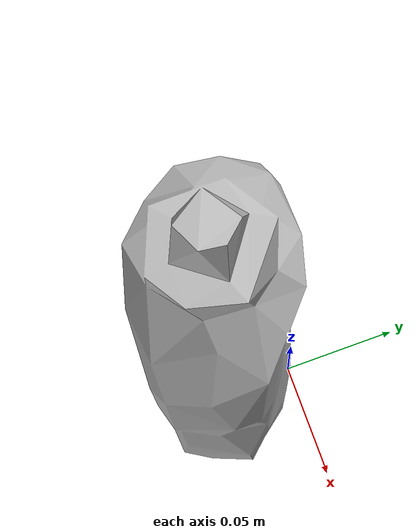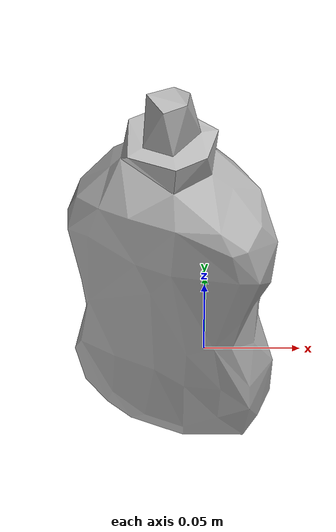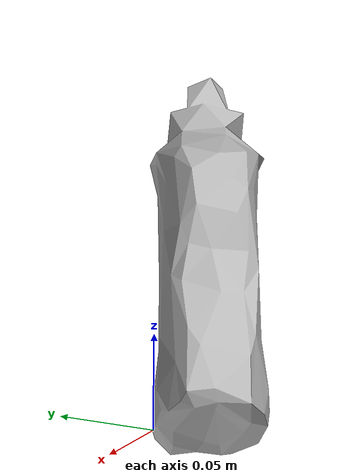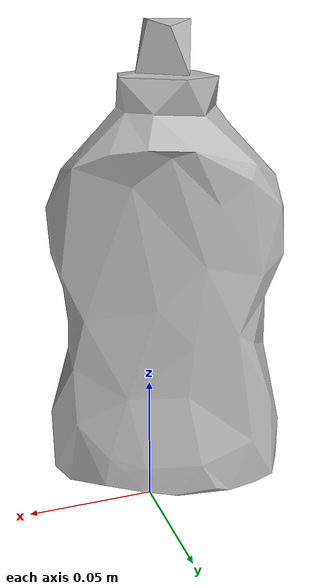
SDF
<?xml version='1.0'?>
<sdf version="1.4">
  <model name="006_mustard_bottle">
    <static>false</static>
    <link name="link">
      <inertial>
        <pose>-0.01506582267402352 -0.023092816082080372 0.07657678115417123 3.1396939599287266 -0.00637488278866139 -1.9700794851913883</pose>
        <mass>0.06987076620256882</mass>
        <inertia>
          <ixx>0.00019465967172407547</ixx>
          <ixy>1.5479457998597437e-20</ixy>
          <ixz>-3.396256422913532e-21</ixz>
          <iyy>0.0001697784006469372</iyy>
          <iyz>1.468932954049134e-21</iyz>
          <izz>5.259113146120776e-05</izz>
        </inertia>
      </inertial>
      <collision name="collision">
        <geometry>
          <mesh>
            <!-- Use a downsampled mesh for collisions -->
            <uri>model:///006_mustard_bottle/006_mustard_bottle_250_collision.stl</uri>
	        </mesh>
        </geometry>
        <surface>
      </surface>
      </collision>
      <visual name="visual">
        <geometry>
          <mesh>
            <uri>model:///006_mustard_bottle/textured.obj</uri>
	        </mesh>
        </geometry>
        <material>
          <script>
            <uri>model:///006_mustard_bottle/006_mustard_bottle.material</uri>
            <name>006_mustard_bottle</name>
          </script>
        </material>
      </visual>
    </link>
  </model>
</sdf>
